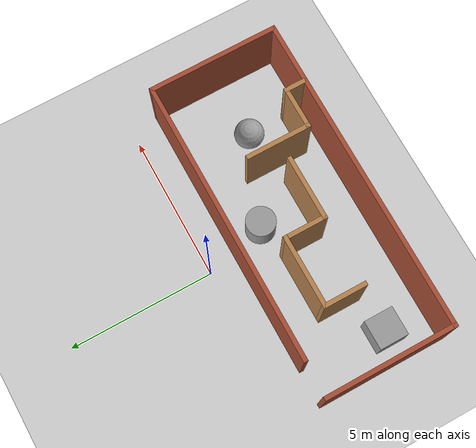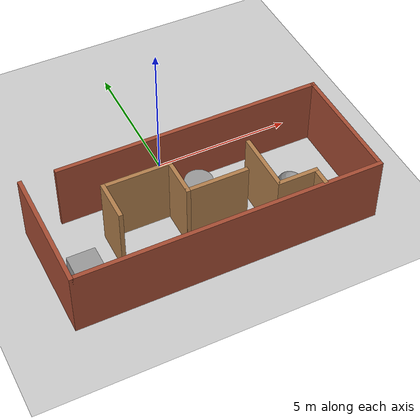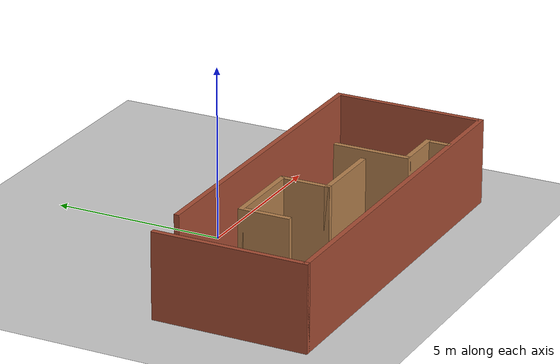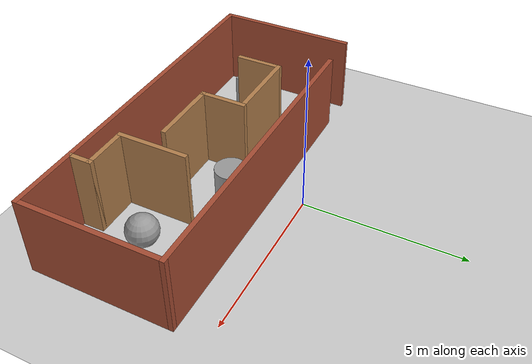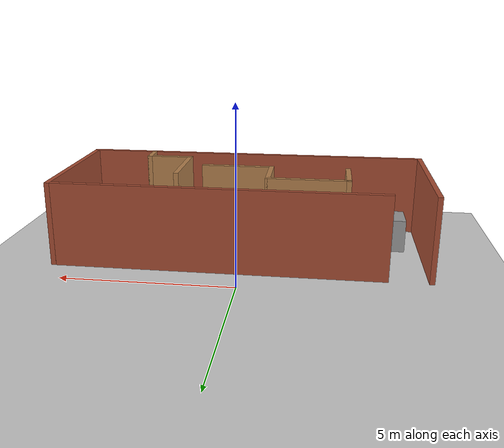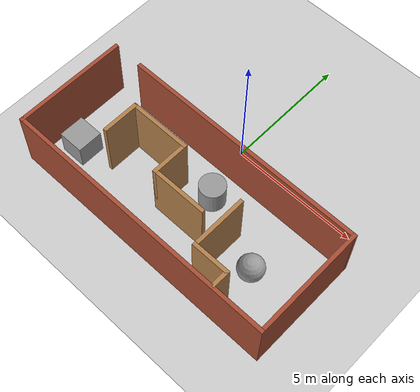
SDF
<sdf version="1.7">
 <world name="default">
  <light name="sun" type="directional">
   <pose>0 0 10 0 -0 0</pose>
   <diffuse>0.8 0.8 0.8 1</diffuse>
   <specular>0.2 0.2 0.2 1</specular>
   <attenuation>
    <range>1000</range>
    <constant>0.9</constant>
    <linear>0.01</linear>
    <quadratic>0.001</quadratic>
   </attenuation>
   <direction>-0.5 0.1 -0.9</direction>
   <spot><inner_angle>0</inner_angle><outer_angle>0</outer_angle><falloff>0</falloff></spot>
  </light>
  <model name="ground_plane">
   <static>1</static>
   <link name="link">
    <collision name="collision">
     <geometry><plane><normal>0 0 1</normal><size>100 100</size></plane></geometry>
     <surface><friction><ode><mu>100</mu><mu2>50</mu2></ode></friction></surface>
    </collision>
    <visual name="visual">
     <cast_shadows>0</cast_shadows>
     <geometry><plane><normal>0 0 1</normal><size>100 100</size></plane></geometry>
     <material>
      <script><uri>file://media/materials/scripts/gazebo.material</uri><name>Gazebo/Grey</name></script>
     </material>
    </visual>
   </link>
  </model>
  <gravity>0 0 -9.8</gravity>
  <magnetic_field>6e-06 2.3e-05 -4.2e-05</magnetic_field>
  <atmosphere type="adiabatic"/>
  <physics type="ode">
   <max_step_size>0.001</max_step_size>
   <real_time_factor>1</real_time_factor>
   <real_time_update_rate>1000</real_time_update_rate>
  </physics>
  <scene><ambient>0.4 0.4 0.4 1</ambient><background>0.7 0.7 0.7 1</background><shadows>1</shadows></scene>
  <audio><device>default</device></audio>
  <spherical_coordinates>
   <surface_model>EARTH_WGS84</surface_model>
   <latitude_deg>0</latitude_deg>
   <longitude_deg>0</longitude_deg>
   <elevation>0</elevation>
   <heading_deg>0</heading_deg>
  </spherical_coordinates>
  <model name="maze">
   <pose>0.12075 -2.70814 0 0 -0 0</pose>
   <link name="Wall_0">
    <collision name="Wall_0_Collision">
     <geometry><box><size>4.5 0.15 2.5</size></box></geometry>
     <pose>0 0 1.25 0 -0 0</pose>
    </collision>
    <visual name="Wall_0_Visual">
     <pose>0 0 1.25 0 -0 0</pose>
     <geometry><box><size>4.5 0.15 2.5</size></box></geometry>
     <material>
      <script><uri>file://media/materials/scripts/gazebo.material</uri><name>Gazebo/Bricks</name></script>
      <ambient>1 1 1 1</ambient>
     </material>
     <meta><layer>0</layer></meta>
    </visual>
    <pose>-5.425 -0.458138 0 0 -0 -1.5708</pose>
   </link>
   <link name="Wall_1">
    <collision name="Wall_1_Collision">
     <geometry><box><size>11 0.15 2.5</size></box></geometry>
     <pose>0 0 1.25 0 -0 0</pose>
    </collision>
    <visual name="Wall_1_Visual">
     <pose>0 0 1.25 0 -0 0</pose>
     <geometry><box><size>11 0.15 2.5</size></box></geometry>
     <material>
      <script><uri>file://media/materials/scripts/gazebo.material</uri><name>Gazebo/Bricks</name></script>
      <ambient>1 1 1 1</ambient>
     </material>
     <meta><layer>0</layer></meta>
    </visual>
    <pose>-0 -2.63314 0 0 -0 0</pose>
   </link>
   <link name="Wall_10">
    <collision name="Wall_10_Collision">
     <geometry><box><size>2.25 0.15 2.5</size></box></geometry>
     <pose>0 0 1.25 0 -0 0</pose>
    </collision>
    <visual name="Wall_10_Visual">
     <pose>0 0 1.25 0 -0 0</pose>
     <geometry><box><size>2.25 0.15 2.5</size></box></geometry>
     <material>
      <script><uri>file://media/materials/scripts/gazebo.material</uri><name>Gazebo/Wood</name></script>
      <ambient>1 1 1 1</ambient>
     </material>
     <meta><layer>0</layer></meta>
    </visual>
    <pose>2.0385 -0.908638 0 0 -0 -1.5708</pose>
   </link>
   <link name="Wall_11">
    <collision name="Wall_11_Collision">
     <geometry><box><size>1.5 0.15 2.5</size></box></geometry>
     <pose>0 0 1.25 0 -0 0</pose>
    </collision>
    <visual name="Wall_11_Visual">
     <pose>0 0 1.25 0 -0 0</pose>
     <geometry><box><size>1.5 0.15 2.5</size></box></geometry>
     <material>
      <script><uri>file://media/materials/scripts/gazebo.material</uri><name>Gazebo/Wood</name></script>
      <ambient>1 1 1 1</ambient>
     </material>
     <meta><layer>0</layer></meta>
    </visual>
    <pose>2.7135 -1.95864 0 0 -0 0</pose>
   </link>
   <link name="Wall_12">
    <collision name="Wall_12_Collision">
     <geometry><box><size>0.75 0.15 2.5</size></box></geometry>
     <pose>0 0 1.25 0 -0 0</pose>
    </collision>
    <visual name="Wall_12_Visual">
     <pose>0 0 1.25 0 -0 0</pose>
     <geometry><box><size>0.75 0.15 2.5</size></box></geometry>
     <material>
      <script><uri>file://media/materials/scripts/gazebo.material</uri><name>Gazebo/Wood</name></script>
      <ambient>1 1 1 1</ambient>
     </material>
     <meta><layer>0</layer></meta>
    </visual>
    <pose>3.3885 -2.25864 0 0 -0 -1.5708</pose>
   </link>
   <link name="Wall_2">
    <collision name="Wall_2_Collision">
     <geometry><box><size>4.5 0.15 2.5</size></box></geometry>
     <pose>0 0 1.25 0 -0 0</pose>
    </collision>
    <visual name="Wall_2_Visual">
     <pose>0 0 1.25 0 -0 0</pose>
     <geometry><box><size>4.5 0.15 2.5</size></box></geometry>
     <material>
      <script><uri>file://media/materials/scripts/gazebo.material</uri><name>Gazebo/Bricks</name></script>
      <ambient>1 1 1 1</ambient>
     </material>
     <meta><layer>0</layer></meta>
    </visual>
    <pose>5.425 -0.458138 0 0 -0 1.5708</pose>
   </link>
   <link name="Wall_3">
    <collision name="Wall_3_Collision">
     <geometry><box><size>9.75 0.15 2.5</size></box></geometry>
     <pose>0 0 1.25 0 -0 0</pose>
    </collision>
    <visual name="Wall_3_Visual">
     <pose>0 0 1.25 0 -0 0</pose>
     <geometry><box><size>9.75 0.15 2.5</size></box></geometry>
     <material>
      <script><uri>file://media/materials/scripts/gazebo.material</uri><name>Gazebo/Bricks</name></script>
      <ambient>1 1 1 1</ambient>
     </material>
     <meta><layer>0</layer></meta>
    </visual>
    <pose>0.625 1.71686 0 0 -0 3.14159</pose>
   </link>
   <link name="Wall_5">
    <collision name="Wall_5_Collision">
     <geometry><box><size>1.5 0.15 2.5</size></box></geometry>
     <pose>0 0 1.25 0 -0 0</pose>
    </collision>
    <visual name="Wall_5_Visual">
     <pose>0 0 1.25 0 -0 0</pose>
     <geometry><box><size>1.5 0.15 2.5</size></box></geometry>
     <material>
      <script><uri>file://media/materials/scripts/gazebo.material</uri><name>Gazebo/Wood</name></script>
      <ambient>1 1 1 1</ambient>
     </material>
     <meta><layer>0</layer></meta>
    </visual>
    <pose>-3.0905 -0.264637 0 0 -0 1.5708</pose>
   </link>
   <link name="Wall_6">
    <collision name="Wall_6_Collision">
     <geometry><box><size>2.5 0.15 2.5</size></box></geometry>
     <pose>0 0 1.25 0 -0 0</pose>
    </collision>
    <visual name="Wall_6_Visual">
     <pose>0 0 1.25 0 -0 0</pose>
     <geometry><box><size>2.5 0.15 2.5</size></box></geometry>
     <material>
      <script><uri>file://media/materials/scripts/gazebo.material</uri><name>Gazebo/Wood</name></script>
      <ambient>1 1 1 1</ambient>
     </material>
     <meta><layer>0</layer></meta>
    </visual>
    <pose>-1.9155 0.410362 0 0 -0 0</pose>
   </link>
   <link name="Wall_7">
    <collision name="Wall_7_Collision">
     <geometry><box><size>1.5 0.15 2.5</size></box></geometry>
     <pose>0 0 1.25 0 -0 0</pose>
    </collision>
    <visual name="Wall_7_Visual">
     <pose>0 0 1.25 0 -0 0</pose>
     <geometry><box><size>1.5 0.15 2.5</size></box></geometry>
     <material>
      <script><uri>file://media/materials/scripts/gazebo.material</uri><name>Gazebo/Wood</name></script>
      <ambient>1 1 1 1</ambient>
     </material>
     <meta><layer>0</layer></meta>
    </visual>
    <pose>-0.7405 -0.264637 0 0 -0 -1.5708</pose>
   </link>
   <link name="Wall_8">
    <collision name="Wall_8_Collision">
     <geometry><box><size>2.25 0.15 2.5</size></box></geometry>
     <pose>0 0 1.25 0 -0 0</pose>
    </collision>
    <visual name="Wall_8_Visual">
     <pose>0 0 1.25 0 -0 0</pose>
     <geometry><box><size>2.25 0.15 2.5</size></box></geometry>
     <material>
      <script><uri>file://media/materials/scripts/gazebo.material</uri><name>Gazebo/Wood</name></script>
      <ambient>1 1 1 1</ambient>
     </material>
     <meta><layer>0</layer></meta>
    </visual>
    <pose>0.3095 -0.939637 0 0 -0 0</pose>
   </link>
   <static>1</static>
  </model>
  <model name="unit_sphere">
   <pose>3.42962 -3.30772 0.5 0 -0 0</pose>
   <link name="link">
    <inertial>
     <mass>1</mass>
     <inertia><ixx>0.1</ixx><ixy>0</ixy><ixz>0</ixz><iyy>0.1</iyy><iyz>0</iyz><izz>0.1</izz></inertia>
    </inertial>
    <collision name="collision"><geometry><sphere><radius>0.5</radius></sphere></geometry></collision>
    <visual name="visual">
     <geometry><sphere><radius>0.5</radius></sphere></geometry>
     <material>
      <script><name>Gazebo/Grey</name><uri>file://media/materials/scripts/gazebo.material</uri></script>
     </material>
    </visual>
   </link>
  </model>
  <model name="unit_cylinder">
   <pose>0.529621 -2.11564 0.499993 -3e-06 -4e-06 -0</pose>
   <link name="link">
    <inertial>
     <mass>1</mass>
     <inertia><ixx>0.145833</ixx><ixy>0</ixy><ixz>0</ixz><iyy>0.145833</iyy><iyz>0</iyz><izz>0.125</izz></inertia>
    </inertial>
    <collision name="collision">
     <geometry><cylinder><radius>0.5</radius><length>1</length></cylinder></geometry>
    </collision>
    <visual name="visual">
     <geometry><cylinder><radius>0.5</radius><length>1</length></cylinder></geometry>
     <material>
      <script><name>Gazebo/Grey</name><uri>file://media/materials/scripts/gazebo.material</uri></script>
     </material>
    </visual>
   </link>
  </model>
  <light name="user_point_light_0" type="point">
   <pose>2.68218 -1.8434 1 0 -0 0</pose>
   <diffuse>0.5 0.5 0.5 1</diffuse>
   <specular>0.1 0.1 0.1 1</specular>
   <attenuation>
    <range>20</range>
    <constant>0.5</constant>
    <linear>0.01</linear>
    <quadratic>0.001</quadratic>
   </attenuation>
   <cast_shadows>0</cast_shadows>
   <direction>0 0 -1</direction>
  </light>
  <model name="unit_box">
   <pose>-4.29345 -3.83679 0.5 0 -0 0</pose>
   <link name="link">
    <inertial>
     <mass>1</mass>
     <inertia>
      <ixx>0.166667</ixx>
      <ixy>0</ixy>
      <ixz>0</ixz>
      <iyy>0.166667</iyy>
      <iyz>0</iyz>
      <izz>0.166667</izz>
     </inertia>
    </inertial>
    <collision name="collision"><geometry><box><size>1 1 1</size></box></geometry></collision>
    <visual name="visual">
     <geometry><box><size>1 1 1</size></box></geometry>
     <material>
      <script><name>Gazebo/Grey</name><uri>file://media/materials/scripts/gazebo.material</uri></script>
     </material>
    </visual>
   </link>
  </model>
 </world>
</sdf>
